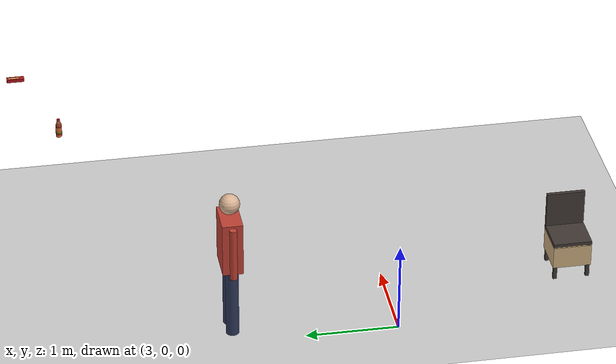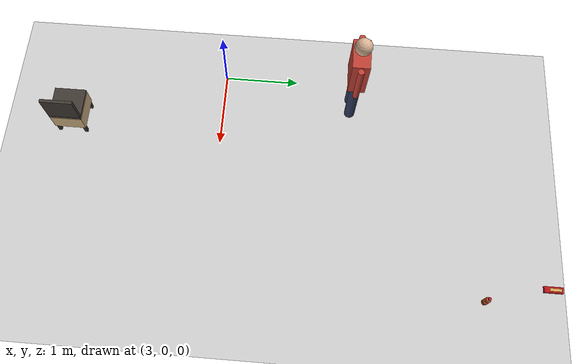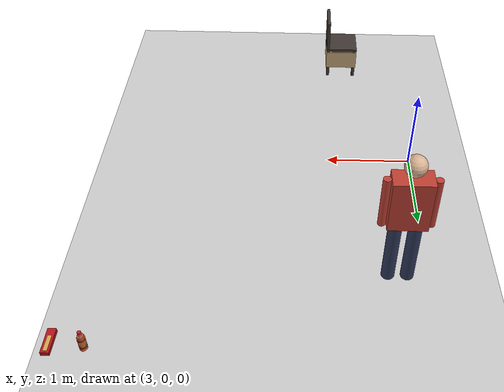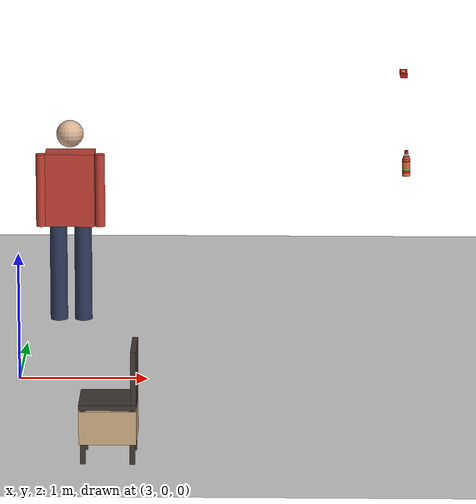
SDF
<sdf version="1.6">
 <world name="robocup_casa">
  <include><uri>model://sun</uri></include>
  <include><uri>model://ground_plane</uri></include>
  <model name="silla_e">
   <static>true</static>
   <link name="l0">
    <pose>3.786 -2.030 0.275 0 0 3.1416</pose>
    <collision name="c"><geometry><box><size>0.420 0.420 0.250</size></box></geometry></collision>
    <visual name="v">
     <geometry><box><size>0.420 0.420 0.250</size></box></geometry>
     <material><ambient>0.80 0.68 0.50 1</ambient><diffuse>0.80 0.68 0.50 1</diffuse></material>
    </visual>
   </link>
   <link name="l1">
    <pose>3.786 -2.030 0.430 0 0 3.1416</pose>
    <collision name="c"><geometry><box><size>0.420 0.420 0.040</size></box></geometry></collision>
    <visual name="v">
     <geometry><box><size>0.420 0.420 0.040</size></box></geometry>
     <material><ambient>0.25 0.22 0.20 1</ambient><diffuse>0.25 0.22 0.20 1</diffuse></material>
    </visual>
   </link>
   <link name="l2">
    <pose>3.966 -1.850 0.205 0 0 3.1416</pose>
    <collision name="c"><geometry><box><size>0.040 0.040 0.410</size></box></geometry></collision>
    <visual name="v">
     <geometry><box><size>0.040 0.040 0.410</size></box></geometry>
     <material><ambient>0.25 0.22 0.20 1</ambient><diffuse>0.25 0.22 0.20 1</diffuse></material>
    </visual>
   </link>
   <link name="l3">
    <pose>3.966 -2.210 0.205 0 0 3.1416</pose>
    <collision name="c"><geometry><box><size>0.040 0.040 0.410</size></box></geometry></collision>
    <visual name="v">
     <geometry><box><size>0.040 0.040 0.410</size></box></geometry>
     <material><ambient>0.25 0.22 0.20 1</ambient><diffuse>0.25 0.22 0.20 1</diffuse></material>
    </visual>
   </link>
   <link name="l4">
    <pose>3.606 -1.850 0.205 0 0 3.1416</pose>
    <collision name="c"><geometry><box><size>0.040 0.040 0.410</size></box></geometry></collision>
    <visual name="v">
     <geometry><box><size>0.040 0.040 0.410</size></box></geometry>
     <material><ambient>0.25 0.22 0.20 1</ambient><diffuse>0.25 0.22 0.20 1</diffuse></material>
    </visual>
   </link>
   <link name="l5">
    <pose>3.606 -2.210 0.205 0 0 3.1416</pose>
    <collision name="c"><geometry><box><size>0.040 0.040 0.410</size></box></geometry></collision>
    <visual name="v">
     <geometry><box><size>0.040 0.040 0.410</size></box></geometry>
     <material><ambient>0.25 0.22 0.20 1</ambient><diffuse>0.25 0.22 0.20 1</diffuse></material>
    </visual>
   </link>
   <link name="l6">
    <pose>3.976 -2.030 0.650 0 0 3.1416</pose>
    <collision name="c"><geometry><box><size>0.040 0.420 0.400</size></box></geometry></collision>
    <visual name="v">
     <geometry><box><size>0.040 0.420 0.400</size></box></geometry>
     <material><ambient>0.25 0.22 0.20 1</ambient><diffuse>0.25 0.22 0.20 1</diffuse></material>
    </visual>
   </link>
  </model>
  <model name="galletas_librero">
   <pose>6.050 3.700 1.621 0 0 1.571</pose>
   <link name="link">
    <inertial>
     <pose>0 0 0.0175 0 0 0</pose>
     <mass>0.13</mass>
     <inertia>
      <ixx>5.491e-05</ixx>
      <iyy>4.044e-04</iyy>
      <izz>4.327e-04</izz>
      <ixy>0</ixy>
      <ixz>0</ixz>
      <iyz>0</iyz>
     </inertia>
    </inertial>
    <collision name="c">
     <pose>0 0 0.0175 0 0 0</pose>
     <geometry><box><size>0.1900 0.0620 0.0350</size></box></geometry>
     <surface><friction><ode><mu>1.0</mu><mu2>1.0</mu2></ode></friction></surface>
    </collision>
    <visual name="v0">
     <pose>0 0 0.0175 0 0 0</pose>
     <geometry><box><size>0.1900 0.0620 0.0350</size></box></geometry>
     <material><ambient>0.70 0.08 0.10 1</ambient><diffuse>0.70 0.08 0.10 1</diffuse></material>
    </visual>
    <visual name="v1">
     <pose>0.02 0 0.0355 0 0 0</pose>
     <geometry><box><size>0.1200 0.0300 0.0010</size></box></geometry>
     <material><ambient>0.85 0.65 0.30 1</ambient><diffuse>0.85 0.65 0.30 1</diffuse></material>
    </visual>
   </link>
  </model>
  <model name="botella_librero">
   <pose>6.070 3.250 0.851 0 0 0.000</pose>
   <link name="link">
    <inertial>
     <pose>0 0 0.1100 0 0 0</pose>
     <mass>0.55</mass>
     <inertia>
      <ixx>2.368e-03</ixx>
      <iyy>2.368e-03</iyy>
      <izz>2.995e-04</izz>
      <ixy>0</ixy>
      <ixz>0</ixz>
      <iyz>0</iyz>
     </inertia>
    </inertial>
    <collision name="c">
     <pose>0 0 0.1100 0 0 0</pose>
     <geometry><cylinder><radius>0.0330</radius><length>0.2200</length></cylinder></geometry>
     <surface><friction><ode><mu>1.0</mu><mu2>1.0</mu2></ode></friction></surface>
    </collision>
    <visual name="v0">
     <pose>0 0 0.075 0 0 0</pose>
     <geometry><cylinder><radius>0.0330</radius><length>0.1500</length></cylinder></geometry>
     <material><ambient>0.86 0.40 0.22 1</ambient><diffuse>0.86 0.40 0.22 1</diffuse></material>
    </visual>
    <visual name="v1">
     <pose>0 0 0.16 0 0 0</pose>
     <geometry><cylinder><radius>0.0270</radius><length>0.0200</length></cylinder></geometry>
     <material><ambient>0.86 0.40 0.22 1</ambient><diffuse>0.86 0.40 0.22 1</diffuse></material>
    </visual>
    <visual name="v2">
     <pose>0 0 0.182 0 0 0</pose>
     <geometry><cylinder><radius>0.0150</radius><length>0.0250</length></cylinder></geometry>
     <transparency>0.4</transparency>
     <material><ambient>0.75 0.78 0.80 1</ambient><diffuse>0.75 0.78 0.80 1</diffuse></material>
    </visual>
    <visual name="v3">
     <pose>0 0 0.192 0 0 0</pose>
     <geometry><cylinder><radius>0.0190</radius><length>0.0040</length></cylinder></geometry>
     <transparency>0.2</transparency>
     <material><ambient>0.75 0.78 0.80 1</ambient><diffuse>0.75 0.78 0.80 1</diffuse></material>
    </visual>
    <visual name="v4">
     <pose>0 0 0.2075 0 0 0</pose>
     <geometry><cylinder><radius>0.0160</radius><length>0.0250</length></cylinder></geometry>
     <material><ambient>0.80 0.10 0.12 1</ambient><diffuse>0.80 0.10 0.12 1</diffuse></material>
    </visual>
    <visual name="v5">
     <pose>0 0 0.13 0 0 0</pose>
     <geometry><cylinder><radius>0.0340</radius><length>0.0120</length></cylinder></geometry>
     <material><ambient>0.80 0.10 0.12 1</ambient><diffuse>0.80 0.10 0.12 1</diffuse></material>
    </visual>
    <visual name="v6">
     <pose>0 0 0.0625 0 0 0</pose>
     <geometry><cylinder><radius>0.0340</radius><length>0.0150</length></cylinder></geometry>
     <material><ambient>0.85 0.75 0.20 1</ambient><diffuse>0.85 0.75 0.20 1</diffuse></material>
    </visual>
    <visual name="v7">
     <pose>0 0 0.05 0 0 0</pose>
     <geometry><cylinder><radius>0.0340</radius><length>0.0100</length></cylinder></geometry>
     <material><ambient>0.30 0.60 0.25 1</ambient><diffuse>0.30 0.60 0.25 1</diffuse></material>
    </visual>
    <visual name="v8">
     <pose>0 0 0.0375 0 0 0</pose>
     <geometry><cylinder><radius>0.0340</radius><length>0.0150</length></cylinder></geometry>
     <material><ambient>0.80 0.10 0.12 1</ambient><diffuse>0.80 0.10 0.12 1</diffuse></material>
    </visual>
   </link>
  </model>
  <model name="caminante_librero">
   <static>false</static>
   <pose>3.310 1.750 0 0 0 1.5708</pose>
   <link name="cuerpo">
    <gravity>false</gravity>
    <kinematic>true</kinematic>
    <inertial>
     <mass>70</mass>
     <inertia><ixx>10</ixx><iyy>10</iyy><izz>2</izz><ixy>0</ixy><ixz>0</ixz><iyz>0</iyz></inertia>
    </inertial>
    <collision name="c">
     <pose>0 0 0.85 0 0 0</pose>
     <geometry><cylinder><radius>0.20</radius><length>1.70</length></cylinder></geometry>
    </collision>
    <visual name="piernas_i">
     <pose>0.0 0.1 0.4 0 0 0</pose>
     <geometry><cylinder><radius>0.07</radius><length>0.80</length></cylinder></geometry>
     <material><ambient>0.18 0.22 0.35 1</ambient><diffuse>0.18 0.22 0.35 1</diffuse></material>
    </visual>
    <visual name="piernas_d">
     <pose>0.0 -0.1 0.4 0 0 0</pose>
     <geometry><cylinder><radius>0.07</radius><length>0.80</length></cylinder></geometry>
     <material><ambient>0.18 0.22 0.35 1</ambient><diffuse>0.18 0.22 0.35 1</diffuse></material>
    </visual>
    <visual name="torso">
     <pose>0.0 0.0 1.1 0 0 0</pose>
     <geometry><box><size>0.22 0.40 0.60</size></box></geometry>
     <material><ambient>0.75 0.25 0.2 1</ambient><diffuse>0.75 0.25 0.2 1</diffuse></material>
    </visual>
    <visual name="cabeza">
     <pose>0.0 0.0 1.55 0 0 0</pose>
     <geometry><sphere><radius>0.11</radius></sphere></geometry>
     <material><ambient>0.85 0.7 0.58 1</ambient><diffuse>0.85 0.7 0.58 1</diffuse></material>
    </visual>
    <visual name="brazo_i">
     <pose>0.0 0.24 1.08 0 0 0</pose>
     <geometry><cylinder><radius>0.04</radius><length>0.60</length></cylinder></geometry>
     <material><ambient>0.75 0.25 0.2 1</ambient><diffuse>0.75 0.25 0.2 1</diffuse></material>
    </visual>
    <visual name="brazo_d">
     <pose>0.0 -0.24 1.08 0 0 0</pose>
     <geometry><cylinder><radius>0.04</radius><length>0.60</length></cylinder></geometry>
     <material><ambient>0.75 0.25 0.2 1</ambient><diffuse>0.75 0.25 0.2 1</diffuse></material>
    </visual>
   </link>
  </model>
 </world>
</sdf>
